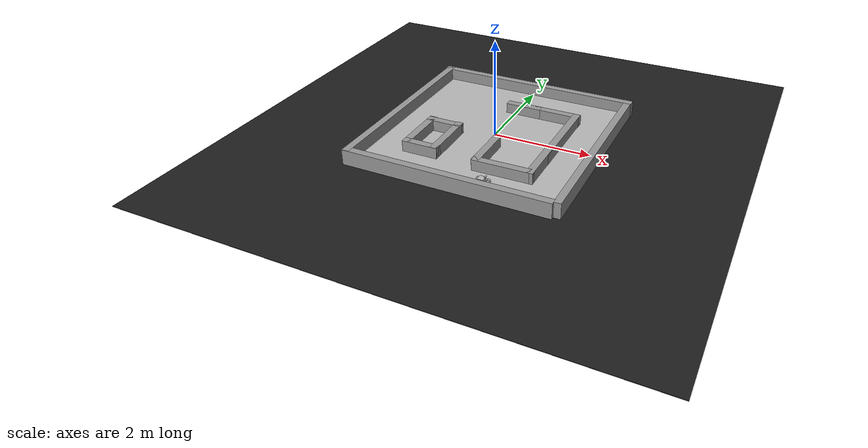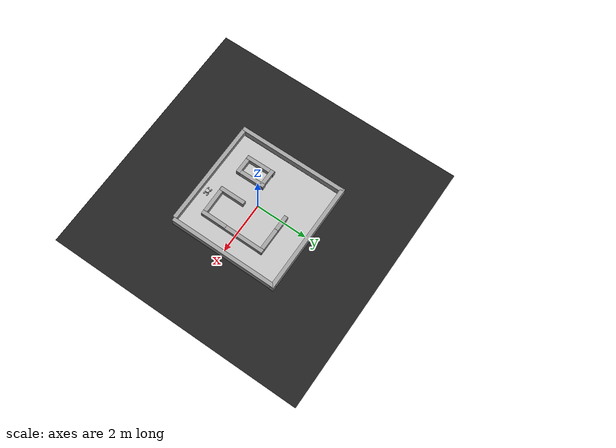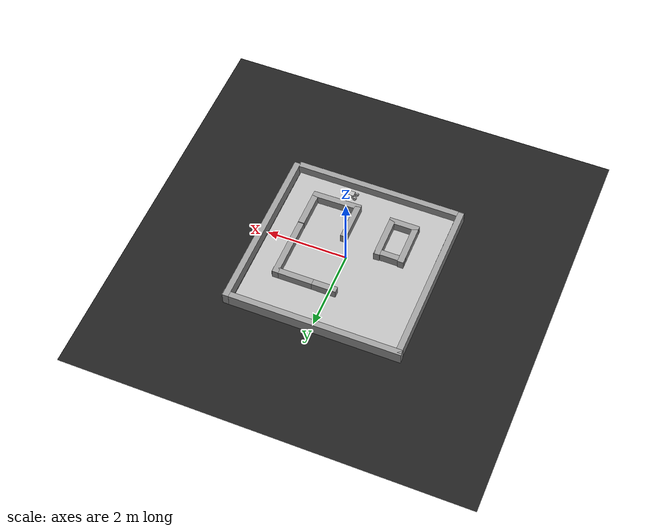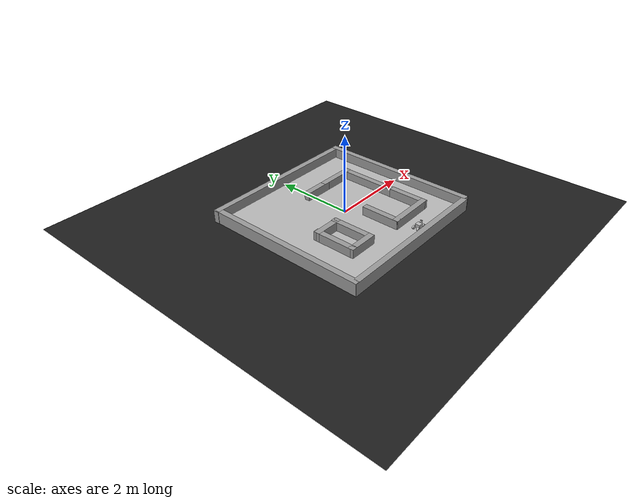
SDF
<sdf version="1.7">
 <world name="default">
  <scene>
   <ambient>0 0 0 1</ambient>
   <shadows>0</shadows>
   <grid>0</grid>
   <background>0.7 0.7 0.7 1</background>
  </scene>
  <model name="course">
   <static>1</static>
   <link name="course_link">
    <collision name="course_collision">
     <geometry><plane><normal>0 0 1</normal><size>4 4</size></plane></geometry>
     <surface><friction><ode><mu>100</mu><mu2>50</mu2></ode></friction></surface>
    </collision>
    <visual name="course_visual">
     <cast_shadows>0</cast_shadows>
     <geometry><plane><normal>0 0 1</normal><size>4 4</size></plane></geometry>
     <material>
      <script>
       <uri>model://test_map2/course/materials/scripts</uri>
       <uri>model://test_map2/course/materials/textures</uri>
       <name>course</name>
      </script>
     </material>
    </visual>
   </link>
   <pose>0 0 0 0 0 -3.14</pose>
  </model>
  <light name="sun" type="directional">
   <pose>0 0 10 0 -0 0</pose>
   <diffuse>0.8 0.8 0.8 1</diffuse>
   <specular>0.1 0.1 0.1 1</specular>
   <attenuation>
    <range>1000</range>
    <constant>0.9</constant>
    <linear>0.01</linear>
    <quadratic>0.001</quadratic>
   </attenuation>
   <direction>-0.5 0.5 -1</direction>
   <spot><inner_angle>0</inner_angle><outer_angle>0</outer_angle><falloff>0</falloff></spot>
  </light>
  <model name="ground2">
   <pose>0 0 -0.1 0 -0 0</pose>
   <static>1</static>
   <link name="ground">
    <collision name="ground_coll"><geometry><box><size>8 8 0.01</size></box></geometry></collision>
    <visual name="ground_vis">
     <geometry><box><size>10 10 0.01</size></box></geometry>
     <material>
      <script><uri>file://media/materials/scripts/gazebo.material</uri><name>Gazebo/FlatBlack</name></script>
     </material>
    </visual>
   </link>
  </model>
  <physics type="ode">
   <max_step_size>0.01</max_step_size>
   <real_time_factor>1</real_time_factor>
   <real_time_update_rate>100</real_time_update_rate>
  </physics>
  <spherical_coordinates>
   <surface_model>EARTH_WGS84</surface_model>
   <latitude_deg>0</latitude_deg>
   <longitude_deg>0</longitude_deg>
   <elevation>0</elevation>
   <heading_deg>0</heading_deg>
  </spherical_coordinates>
  <light name="user_point_light_1" type="point">
   <pose>-1.64815 0.604519 1 0 -0 0</pose>
   <diffuse>0.5 0.5 0.5 1</diffuse>
   <specular>0.1 0.1 0.1 1</specular>
   <attenuation>
    <range>20</range>
    <constant>0.5</constant>
    <linear>0.01</linear>
    <quadratic>0.001</quadratic>
   </attenuation>
   <cast_shadows>0</cast_shadows>
   <direction>0 0 -1</direction>
   <spot><inner_angle>0</inner_angle><outer_angle>0</outer_angle><falloff>0</falloff></spot>
  </light>
  <light name="user_point_light_2" type="point">
   <pose>1.63854 1.69565 1 0 -0 0</pose>
   <diffuse>0.5 0.5 0.5 1</diffuse>
   <specular>0.1 0.1 0.1 1</specular>
   <attenuation>
    <range>20</range>
    <constant>0.5</constant>
    <linear>0.01</linear>
    <quadratic>0.001</quadratic>
   </attenuation>
   <cast_shadows>0</cast_shadows>
   <direction>0 0 -1</direction>
   <spot><inner_angle>0</inner_angle><outer_angle>0</outer_angle><falloff>0</falloff></spot>
  </light>
  <light name="user_point_light_3" type="point">
   <pose>0.42 -3.31 1 0 -0 0</pose>
   <diffuse>0.5 0.5 0.5 1</diffuse>
   <specular>0.1 0.1 0.1 1</specular>
   <attenuation>
    <range>20</range>
    <constant>0.5</constant>
    <linear>0.01</linear>
    <quadratic>0.001</quadratic>
   </attenuation>
   <cast_shadows>0</cast_shadows>
   <direction>0 0 -1</direction>
   <spot><inner_angle>0</inner_angle><outer_angle>0</outer_angle><falloff>0</falloff></spot>
  </light>
  <gravity>0 0 -9.8</gravity>
  <magnetic_field>6e-06 2.3e-05 -4.2e-05</magnetic_field>
  <atmosphere type="adiabatic"/>
  <model name="limo">
   <link name="base_footprint">
    <inertial>
     <pose>0.007905 0 0.149408 0 -0 0</pose>
     <mass>2.3657</mass>
     <inertia>
      <ixx>0.240307</ixx>
      <ixy>0</ixy>
      <ixz>8.71335e-05</ixz>
      <iyy>0.961926</iyy>
      <iyz>0</iyz>
      <izz>0.961621</izz>
     </inertia>
    </inertial>
    <collision name="base_footprint_fixed_joint_lump__base_link_collision">
     <pose>0 0 0.08 0 -0 1.57</pose>
     <geometry><box><size>0.13 0.12 0.1</size></box></geometry>
    </collision>
    <collision name="base_footprint_fixed_joint_lump__depth_camera_collision_collision_1">
     <pose>0.084 0 0.18 0 -0 0</pose>
     <geometry><box><size>0.02 0.06 0.015</size></box></geometry>
    </collision>
    <collision name="base_footprint_fixed_joint_lump__imu_collision_collision_2">
     <pose>0 0 0.05 0 -0 0</pose>
     <geometry><box><size>0.001 0.001 0.001</size></box></geometry>
    </collision>
    <collision name="base_footprint_fixed_joint_lump__laser_collision_collision_3">
     <pose>0.103 0 0.116 0 -0 0</pose>
     <geometry><cylinder><length>0.016</length><radius>0.032</radius></cylinder></geometry>
    </collision>
    <visual name="base_footprint_fixed_joint_lump__base_link_visual">
     <pose>0 0 0.08 0 -0 1.57</pose>
     <geometry><box><size>0.13 0.12 0.1</size></box></geometry>
    </visual>
    <visual name="base_footprint_fixed_joint_lump__depth_camera_visual_visual_1">
     <pose>0.084 0 0.18 0 -0 0</pose>
     <geometry><box><size>0.02 0.06 0.015</size></box></geometry>
    </visual>
    <visual name="base_footprint_fixed_joint_lump__imu_visual_visual_2">
     <pose>0 0 0.05 0 -0 0</pose>
     <geometry><box><size>0.001 0.001 0.001</size></box></geometry>
    </visual>
    <visual name="base_footprint_fixed_joint_lump__laser_visual_visual_3">
     <pose>0.103 0 0.116 0 -0 0</pose>
     <geometry><cylinder><length>0.01</length><radius>0.02</radius></cylinder></geometry>
    </visual>
    <sensor name="sensor_camera" type="depth">
     <always_on>1</always_on>
     <visualize>1</visualize>
     <update_rate>10</update_rate>
     <camera name="head">
      <horizontal_fov>1.39626</horizontal_fov>
      <image><width>640</width><height>480</height><format>R8G8B8</format></image>
      <clip><near>0.02</near><far>300</far></clip>
     </camera>
     <plugin name="gazebo_ros_depth_camera_sensor" filename="libgazebo_ros_openni_kinect.so">
      <baseline>0.2</baseline>
      <alwaysOn>1</alwaysOn>
      <updateRate>0.0</updateRate>
      <cameraName>camera_ir</cameraName>
      <imageTopicName>/limo/color/image_raw</imageTopicName>
      <cameraInfoTopicName>/limo/color/camera_info</cameraInfoTopicName>
      <frameName>depth_link</frameName>
      <cameraname>depth_camera_link</cameraname>
      <pointCloudCutoff>0.5</pointCloudCutoff>
      <pointCloudCutoffMax>3.0</pointCloudCutoffMax>
      <distortionK1>0</distortionK1>
      <distortionK2>0</distortionK2>
      <distortionK3>0</distortionK3>
      <distortionT1>0</distortionT1>
      <distortionT2>0</distortionT2>
      <CxPrime>0</CxPrime>
      <Cx>0</Cx>
      <Cy>0</Cy>
      <focalLength>0</focalLength>
      <hackBaseline>0</hackBaseline>
      <robotNamespace>/</robotNamespace>
     </plugin>
     <pose>0.084 0 0.18 0 -0 0</pose>
    </sensor>
    <sensor name="imu_sensor" type="imu">
     <always_on>1</always_on>
     <update_rate>100</update_rate>
     <visualize>1</visualize>
     <topic>__default_topic__</topic>
     <plugin name="imu_plugin" filename="libgazebo_ros_imu_sensor.so">
      <topicName>/limo/imu</topicName>
      <bodyName>imu_link</bodyName>
      <updateRateHZ>100.0</updateRateHZ>
      <gaussianNoise>0.001</gaussianNoise>
      <xyzOffset>0 0 0</xyzOffset>
      <rpyOffset>0 0 0</rpyOffset>
      <frameName>imu_link</frameName>
      <robotNamespace>/</robotNamespace>
     </plugin>
     <pose>0 0 0.05 0 -0 0</pose>
    </sensor>
    <sensor name="laser_sensor" type="ray">
     <visualize>0</visualize>
     <update_rate>8</update_rate>
     <ray>
      <scan>
       <horizontal>
        <samples>720</samples>
        <resolution>1</resolution>
        <min_angle>-2.0944</min_angle>
        <max_angle>2.0944</max_angle>
       </horizontal>
       <vertical><samples>1</samples><min_angle>0</min_angle><max_angle>0</max_angle></vertical>
      </scan>
      <range><min>0.05</min><max>8</max><resolution>0.01</resolution></range>
      <noise><type>gaussian</type><mean>0</mean><stddev>0.01</stddev></noise>
     </ray>
     <plugin name="gazebo_ros_laser_sensor" filename="libgazebo_ros_laser.so">
      <topicName>/limo/scan</topicName>
      <frameName>laser_link</frameName>
      <robotNamespace>/</robotNamespace>
     </plugin>
     <pose>0.103 0 0.116 0 -0 0</pose>
    </sensor>
   </link>
   <joint name="front_left_wheel" type="revolute">
    <pose relative_to="base_footprint">0.1 0.065 0.05 0 -0 0</pose>
    <parent>base_footprint</parent>
    <child>front_left_wheel_link</child>
    <axis>
     <xyz>0 1 0</xyz>
     <limit><lower>-1e+16</lower><upper>1e+16</upper></limit>
     <dynamics><spring_reference>0</spring_reference><spring_stiffness>0</spring_stiffness></dynamics>
    </axis>
    <physics><ode><limit><cfm>0</cfm><erp>0.2</erp></limit></ode></physics>
   </joint>
   <link name="front_left_wheel_link">
    <pose relative_to="front_left_wheel">0 0 0 0 -0 0</pose>
    <inertial>
     <mass>0.5</mass>
     <inertia><ixx>0.01055</ixx><ixy>0</ixy><ixz>0</ixz><iyy>0.00075</iyy><iyz>0</iyz><izz>0.01055</izz></inertia>
    </inertial>
    <collision name="front_left_wheel_link_collision">
     <pose>0 0.0225 0 1.57159 1.57079 3.14159</pose>
     <geometry><cylinder><length>0.045</length><radius>0.045</radius></cylinder></geometry>
    </collision>
    <visual name="front_left_wheel_link_visual">
     <pose>0 0 0 1.57159 1.57079 3.14159</pose>
     <geometry><cylinder><length>0.045</length><radius>0.045</radius></cylinder></geometry>
    </visual>
   </link>
   <joint name="front_right_wheel" type="revolute">
    <pose relative_to="base_footprint">0.1 -0.065 0.05 3.14159 -0 0</pose>
    <parent>base_footprint</parent>
    <child>front_right_wheel_link</child>
    <axis>
     <xyz>0 -1 0</xyz>
     <limit><lower>-1e+16</lower><upper>1e+16</upper></limit>
     <dynamics><spring_reference>0</spring_reference><spring_stiffness>0</spring_stiffness></dynamics>
    </axis>
    <physics><ode><limit><cfm>0</cfm><erp>0.2</erp></limit></ode></physics>
   </joint>
   <link name="front_right_wheel_link">
    <pose relative_to="front_right_wheel">0 0 0 0 -0 0</pose>
    <inertial>
     <mass>0.5</mass>
     <inertia><ixx>0.01055</ixx><ixy>0</ixy><ixz>0</ixz><iyy>0.00075</iyy><iyz>0</iyz><izz>0.01055</izz></inertia>
    </inertial>
    <collision name="front_right_wheel_link_collision">
     <pose>0 0.0225 0 1.57159 1.57079 3.14159</pose>
     <geometry><cylinder><length>0.045</length><radius>0.045</radius></cylinder></geometry>
    </collision>
    <visual name="front_right_wheel_link_visual">
     <pose>0 0 0 1.57159 1.57079 3.14159</pose>
     <geometry><cylinder><length>0.045</length><radius>0.045</radius></cylinder></geometry>
    </visual>
   </link>
   <joint name="rear_left_wheel" type="revolute">
    <pose relative_to="base_footprint">-0.1 0.065 0.05 0 -0 0</pose>
    <parent>base_footprint</parent>
    <child>rear_left_wheel_link</child>
    <axis>
     <xyz>0 1 0</xyz>
     <limit><lower>-1e+16</lower><upper>1e+16</upper></limit>
     <dynamics><spring_reference>0</spring_reference><spring_stiffness>0</spring_stiffness></dynamics>
    </axis>
    <physics><ode><limit><cfm>0</cfm><erp>0.2</erp></limit></ode></physics>
   </joint>
   <link name="rear_left_wheel_link">
    <pose relative_to="rear_left_wheel">0 0 0 0 -0 0</pose>
    <inertial>
     <mass>0.5</mass>
     <inertia><ixx>0.01055</ixx><ixy>0</ixy><ixz>0</ixz><iyy>0.00075</iyy><iyz>0</iyz><izz>0.01055</izz></inertia>
    </inertial>
    <collision name="rear_left_wheel_link_collision">
     <pose>0 0.0225 0 1.57159 1.57079 3.14159</pose>
     <geometry><cylinder><length>0.045</length><radius>0.045</radius></cylinder></geometry>
    </collision>
    <visual name="rear_left_wheel_link_visual">
     <pose>0 0 0 1.57159 1.57079 3.14159</pose>
     <geometry><cylinder><length>0.045</length><radius>0.045</radius></cylinder></geometry>
    </visual>
   </link>
   <joint name="rear_right_wheel" type="revolute">
    <pose relative_to="base_footprint">-0.1 -0.065 0.05 3.14159 -0 0</pose>
    <parent>base_footprint</parent>
    <child>rear_right_wheel_link</child>
    <axis>
     <xyz>0 -1 0</xyz>
     <limit><lower>-1e+16</lower><upper>1e+16</upper></limit>
     <dynamics><spring_reference>0</spring_reference><spring_stiffness>0</spring_stiffness></dynamics>
    </axis>
    <physics><ode><limit><cfm>0</cfm><erp>0.2</erp></limit></ode></physics>
   </joint>
   <link name="rear_right_wheel_link">
    <pose relative_to="rear_right_wheel">0 0 0 0 -0 0</pose>
    <inertial>
     <mass>0.5</mass>
     <inertia><ixx>0.01055</ixx><ixy>0</ixy><ixz>0</ixz><iyy>0.00075</iyy><iyz>0</iyz><izz>0.01055</izz></inertia>
    </inertial>
    <collision name="rear_right_wheel_link_collision">
     <pose>0 0.0225 0 1.57159 1.57079 3.14159</pose>
     <geometry><cylinder><length>0.045</length><radius>0.045</radius></cylinder></geometry>
    </collision>
    <visual name="rear_right_wheel_link_visual">
     <pose>0 0 0 1.57159 1.57079 3.14159</pose>
     <geometry><cylinder><length>0.045</length><radius>0.045</radius></cylinder></geometry>
    </visual>
   </link>
   <plugin name="gazebo_ros_control" filename="libgazebo_ros_control.so">
    <robotNamespace>limo</robotNamespace>
   </plugin>
   <plugin name="four_diff_controller" filename="libgazebo_ros_skid_steer_drive.so">
    <updateRate>100.0</updateRate>
    <robotNamespace>limo</robotNamespace>
    <leftFrontJoint>front_left_wheel</leftFrontJoint>
    <rightFrontJoint>front_right_wheel</rightFrontJoint>
    <leftRearJoint>rear_left_wheel</leftRearJoint>
    <rightRearJoint>rear_right_wheel</rightRearJoint>
    <wheelSeparation>0.172</wheelSeparation>
    <wheelDiameter>0.09</wheelDiameter>
    <robotBaseFrame>base_footprint</robotBaseFrame>
    <commandTopic>cmd_vel</commandTopic>
    <torque>50</torque>
    <broadcastTF>1</broadcastTF>
    <odometryTopic>odom</odometryTopic>
    <odometryFrame>odom</odometryFrame>
    <covariance_x>0.000100</covariance_x>
    <covariance_y>0.000100</covariance_y>
    <covariance_yaw>0.010000</covariance_yaw>
   </plugin>
   <frame name="depth_camera_to_camera_joint" attached_to="depth_camera_link">
    <pose>0 0 0 -1.57079 -0 -1.57079</pose>
   </frame>
   <frame name="depth_link" attached_to="depth_camera_to_camera_joint"/>
   <frame name="depth_camera_joint" attached_to="base_link"><pose>0.084 0 0.03 0 -0 0</pose></frame>
   <frame name="depth_camera_link" attached_to="depth_camera_joint"/>
   <frame name="imu_joint" attached_to="base_link"><pose>0 0 -0.1 0 -0 0</pose></frame>
   <frame name="imu_link" attached_to="imu_joint"/>
   <frame name="inertial_joint" attached_to="base_link"/>
   <frame name="inertial_link" attached_to="inertial_joint"/>
   <frame name="laser_joint" attached_to="base_link"><pose>0.103 0 -0.034 0 -0 0</pose></frame>
   <frame name="laser_link" attached_to="laser_joint"/>
   <frame name="base_joint" attached_to="base_footprint"><pose>0 0 0.15 0 -0 0</pose></frame>
   <frame name="base_link" attached_to="base_joint"/>
   <pose>0.556631 -1.76082 -0.005681 0.000673 0.001351 -0.049194</pose>
  </model>
  <model name="wall_map">
   <pose>0.000604 0.022109 -2.27495 0 -0 0</pose>
   <link name="Wall_1">
    <collision name="Wall_1_Collision">
     <geometry><box><size>4.25 0.15 2.5</size></box></geometry>
     <pose>0 0 1.25 0 -0 0</pose>
    </collision>
    <visual name="Wall_1_Visual">
     <pose>0 0 1.25 0 -0 0</pose>
     <geometry><box><size>4.25 0.15 2.5</size></box></geometry>
     <material>
      <script><uri>file://media/materials/scripts/gazebo.material</uri><name>Gazebo/Grey</name></script>
      <ambient>1 1 1 1</ambient>
     </material>
     <meta><layer>0</layer></meta>
    </visual>
    <pose>-0.069 -2.0815 0 0 -0 3.14159</pose>
   </link>
   <link name="Wall_3">
    <collision name="Wall_3_Collision">
     <geometry><box><size>4.25 0.15 2.5</size></box></geometry>
     <pose>0 0 1.25 0 -0 0</pose>
    </collision>
    <visual name="Wall_3_Visual">
     <pose>0 0 1.25 0 -0 0</pose>
     <geometry><box><size>4.25 0.15 2.5</size></box></geometry>
     <material>
      <script><uri>file://media/materials/scripts/gazebo.material</uri><name>Gazebo/Grey</name></script>
      <ambient>1 1 1 1</ambient>
     </material>
     <meta><layer>0</layer></meta>
    </visual>
    <pose>-2.119 -0.02 0 0 -0 -1.5708</pose>
   </link>
   <link name="Wall_5">
    <collision name="Wall_5_Collision">
     <geometry><box><size>4.411 0.15 2.5</size></box></geometry>
     <pose>0 0 1.25 0 -0 0</pose>
    </collision>
    <visual name="Wall_5_Visual">
     <pose>0 0 1.25 0 -0 0</pose>
     <geometry><box><size>4.411 0.15 2.5</size></box></geometry>
     <material>
      <script><uri>file://media/materials/scripts/gazebo.material</uri><name>Gazebo/Grey</name></script>
      <ambient>1 1 1 1</ambient>
     </material>
     <meta><layer>0</layer></meta>
    </visual>
    <pose>0 2.0815 0 0 -0 0</pose>
   </link>
   <link name="Wall_7">
    <collision name="Wall_7_Collision">
     <geometry><box><size>4.25 0.15 2.5</size></box></geometry>
     <pose>0 0 1.25 0 -0 0</pose>
    </collision>
    <visual name="Wall_7_Visual">
     <pose>0 0 1.25 0 -0 0</pose>
     <geometry><box><size>4.25 0.15 2.5</size></box></geometry>
     <material>
      <script><uri>file://media/materials/scripts/gazebo.material</uri><name>Gazebo/Grey</name></script>
      <ambient>1 1 1 1</ambient>
     </material>
     <meta><layer>0</layer></meta>
    </visual>
    <pose>2.119 0.0315 0 0 -0 -1.5708</pose>
   </link>
   <static>1</static>
  </model>
  <model name="wall_map2">
   <pose>0.023442 -0.685699 -2.27167 0 -0 0</pose>
   <link name="Wall_0">
    <collision name="Wall_0_Collision">
     <geometry><box><size>1.2242 0.15 2.5</size></box></geometry>
     <pose>0 0 1.25 0 -0 0</pose>
    </collision>
    <visual name="Wall_0_Visual">
     <pose>0 0 1.25 0 -0 0</pose>
     <geometry><box><size>1.2242 0.15 2.5</size></box></geometry>
     <material>
      <script><uri>file://media/materials/scripts/gazebo.material</uri><name>Gazebo/Grey</name></script>
      <ambient>1 1 1 1</ambient>
     </material>
     <meta><layer>0</layer></meta>
    </visual>
    <pose>0.763199 -0.659319 0 0 -0 0.016099</pose>
   </link>
   <link name="Wall_10">
    <collision name="Wall_10_Collision">
     <geometry><box><size>0.75 0.15 2.5</size></box></geometry>
     <pose>0 0 1.25 0 -0 0</pose>
    </collision>
    <visual name="Wall_10_Visual">
     <pose>0 0 1.25 0 -0 0</pose>
     <geometry><box><size>0.75 0.15 2.5</size></box></geometry>
     <material>
      <script><uri>file://media/materials/scripts/gazebo.material</uri><name>Gazebo/Grey</name></script>
      <ambient>1 1 1 1</ambient>
     </material>
     <meta><layer>0</layer></meta>
    </visual>
    <pose>-0.992121 -0.593986 0 0 -0 0</pose>
   </link>
   <link name="Wall_12">
    <collision name="Wall_12_Collision">
     <geometry><box><size>1.12974 0.15 2.5</size></box></geometry>
     <pose>0 0 1.25 0 -0 0</pose>
    </collision>
    <visual name="Wall_12_Visual">
     <pose>0 0 1.25 0 -0 0</pose>
     <geometry><box><size>1.12974 0.15 2.5</size></box></geometry>
     <material>
      <script><uri>file://media/materials/scripts/gazebo.material</uri><name>Gazebo/Grey</name></script>
      <ambient>1 1 1 1</ambient>
     </material>
     <meta><layer>0</layer></meta>
    </visual>
    <pose>-0.696445 -0.09549 0 0 -0 1.57962</pose>
   </link>
   <link name="Wall_13">
    <collision name="Wall_13_Collision">
     <geometry><box><size>0.75 0.15 2.5</size></box></geometry>
     <pose>0 0 1.25 0 -0 0</pose>
    </collision>
    <visual name="Wall_13_Visual">
     <pose>0 0 1.25 0 -0 0</pose>
     <geometry><box><size>0.75 0.15 2.5</size></box></geometry>
     <material>
      <script><uri>file://media/materials/scripts/gazebo.material</uri><name>Gazebo/Grey</name></script>
      <ambient>1 1 1 1</ambient>
     </material>
     <meta><layer>0</layer></meta>
    </visual>
    <pose>-1.00077 0.377066 0 0 -0 3.14159</pose>
   </link>
   <link name="Wall_14">
    <collision name="Wall_14_Collision">
     <geometry><box><size>1.12974 0.15 2.5</size></box></geometry>
     <pose>0 0 1.25 0 -0 0</pose>
    </collision>
    <visual name="Wall_14_Visual">
     <pose>0 0 1.25 0 -0 0</pose>
     <geometry><box><size>1.12974 0.15 2.5</size></box></geometry>
     <material>
      <script><uri>file://media/materials/scripts/gazebo.material</uri><name>Gazebo/Grey</name></script>
      <ambient>1 1 1 1</ambient>
     </material>
     <meta><layer>0</layer></meta>
    </visual>
    <pose>-1.29644 -0.09549 0 0 -0 -1.56197</pose>
   </link>
   <link name="Wall_3">
    <collision name="Wall_3_Collision">
     <geometry><box><size>1 0.15 2.5</size></box></geometry>
     <pose>0 0 1.25 0 -0 0</pose>
    </collision>
    <visual name="Wall_3_Visual">
     <pose>0 0 1.25 0 -0 0</pose>
     <geometry><box><size>1 0.15 2.5</size></box></geometry>
     <material>
      <script><uri>file://media/materials/scripts/gazebo.material</uri><name>Gazebo/Grey</name></script>
      <ambient>1 1 1 1</ambient>
     </material>
     <meta><layer>0</layer></meta>
    </visual>
    <pose>0.217522 -0.225672 0 0 -0 1.5708</pose>
   </link>
   <link name="Wall_5">
    <collision name="Wall_5_Collision">
     <geometry><box><size>1 0.15 2.5</size></box></geometry>
     <pose>0 0 1.25 0 -0 0</pose>
    </collision>
    <visual name="Wall_5_Visual">
     <pose>0 0 1.25 0 -0 0</pose>
     <geometry><box><size>1 0.15 2.5</size></box></geometry>
     <material>
      <script><uri>file://media/materials/scripts/gazebo.material</uri><name>Gazebo/Grey</name></script>
      <ambient>1 1 1 1</ambient>
     </material>
     <meta><layer>0</layer></meta>
    </visual>
    <pose>1.30023 -0.225672 0 0 -0 1.5708</pose>
   </link>
   <static>1</static>
  </model>
  <model name="map_test3">
   <pose>0.6086 0.23824 -2.28741 0 -0 0</pose>
   <link name="Wall_0">
    <collision name="Wall_0_Collision">
     <geometry><box><size>1.79604 0.15 2.5</size></box></geometry>
     <pose>0 0 1.25 0 -0 0</pose>
    </collision>
    <visual name="Wall_0_Visual">
     <pose>0 0 1.25 0 -0 0</pose>
     <geometry><box><size>1.79604 0.15 2.5</size></box></geometry>
     <material>
      <script><uri>file://media/materials/scripts/gazebo.material</uri><name>Gazebo/Grey</name></script>
      <ambient>1 1 1 1</ambient>
     </material>
     <meta><layer>0</layer></meta>
    </visual>
    <pose>0.718425 0 0 0 -0 -1.5708</pose>
   </link>
   <link name="Wall_2">
    <collision name="Wall_2_Collision">
     <geometry><box><size>1 0.15 2.5</size></box></geometry>
     <pose>0 0 1.25 0 -0 0</pose>
    </collision>
    <visual name="Wall_2_Visual">
     <pose>0 0 1.25 0 -0 0</pose>
     <geometry><box><size>1 0.15 2.5</size></box></geometry>
     <material>
      <script><uri>file://media/materials/scripts/gazebo.material</uri><name>Gazebo/Grey</name></script>
      <ambient>1 1 1 1</ambient>
     </material>
     <meta><layer>0</layer></meta>
    </visual>
    <pose>0.3 0.823013 0 0 -0 3.14159</pose>
   </link>
   <link name="Wall_4">
    <collision name="Wall_4_Collision">
     <geometry><box><size>0.75 0.15 2.5</size></box></geometry>
     <pose>0 0 1.25 0 -0 0</pose>
    </collision>
    <visual name="Wall_4_Visual">
     <pose>0 0 1.25 0 -0 0</pose>
     <geometry><box><size>0.75 0.15 2.5</size></box></geometry>
     <material>
      <script><uri>file://media/materials/scripts/gazebo.material</uri><name>Gazebo/Grey</name></script>
      <ambient>1 1 1 1</ambient>
     </material>
     <meta><layer>0</layer></meta>
    </visual>
    <pose>-0.425 0.823013 0 0 -0 3.14159</pose>
   </link>
   <static>1</static>
  </model>
 </world>
</sdf>
